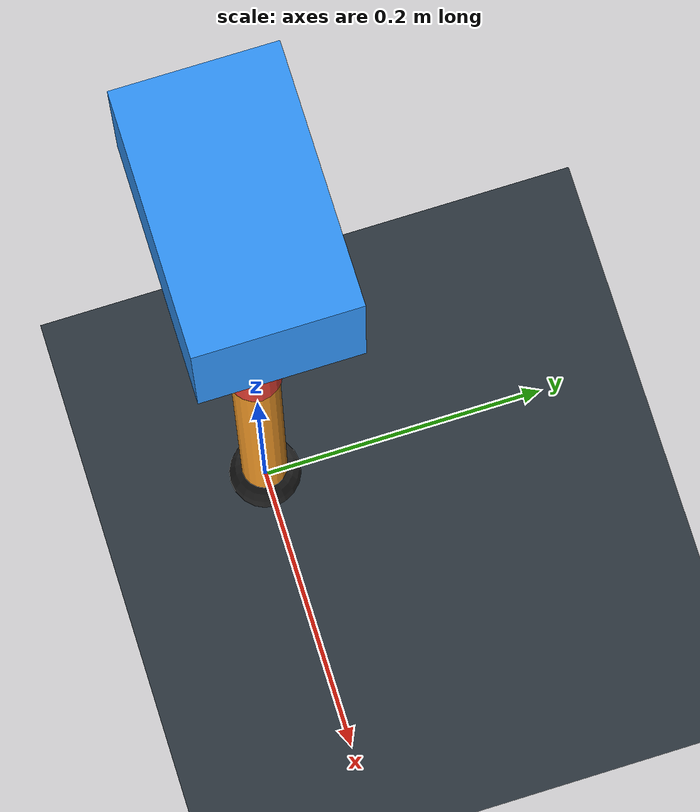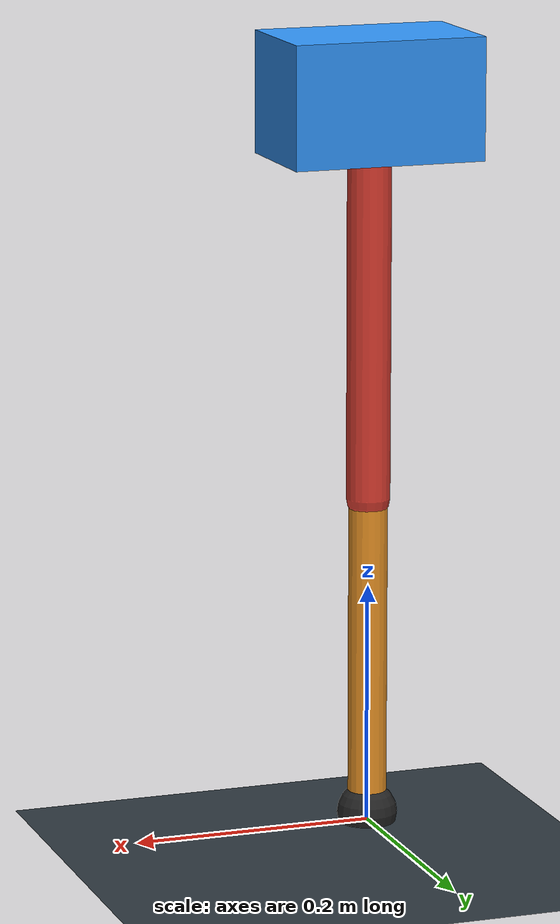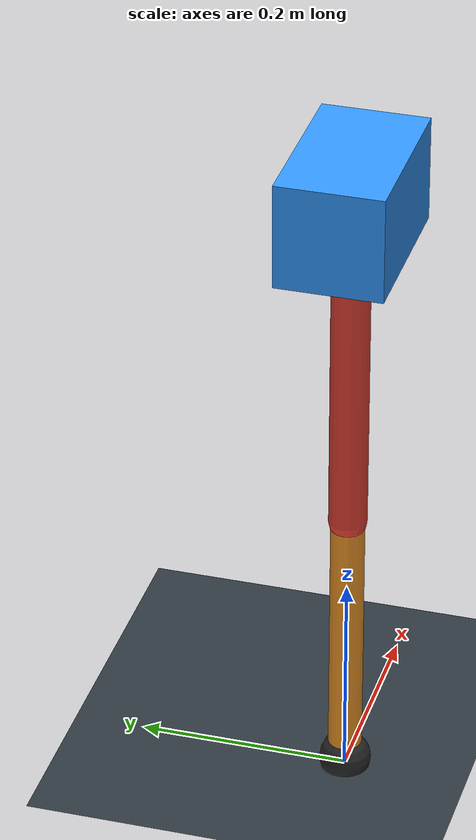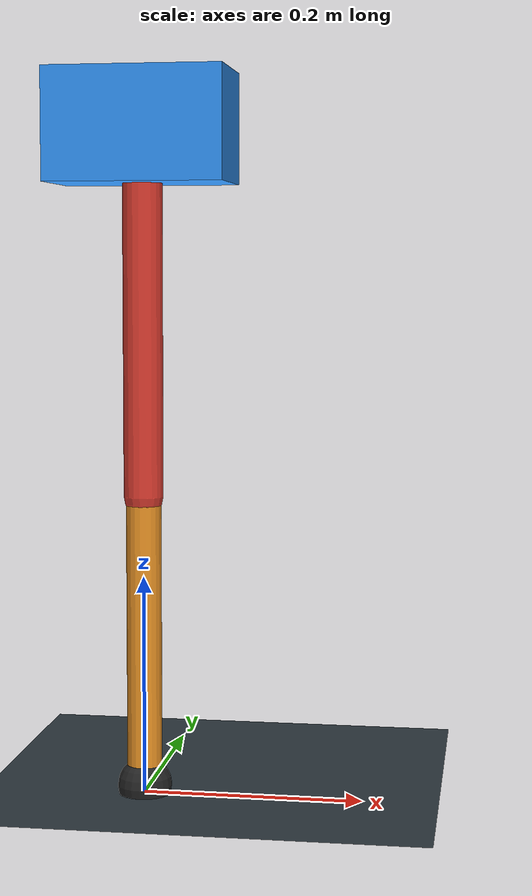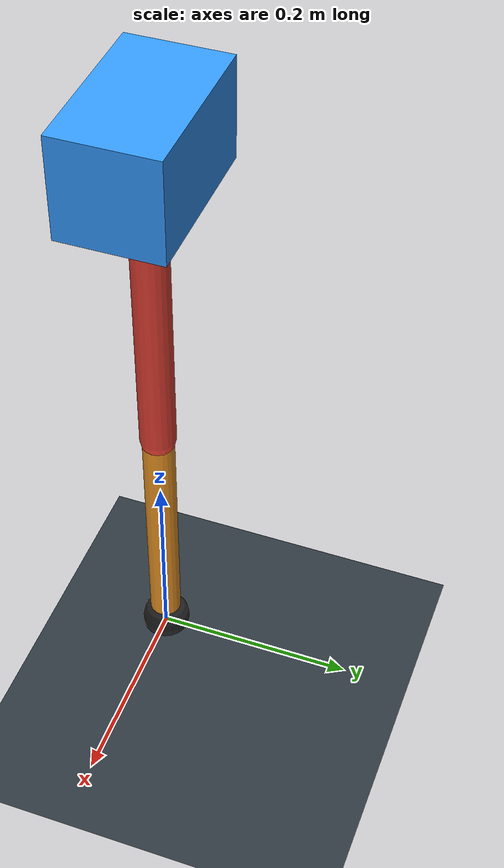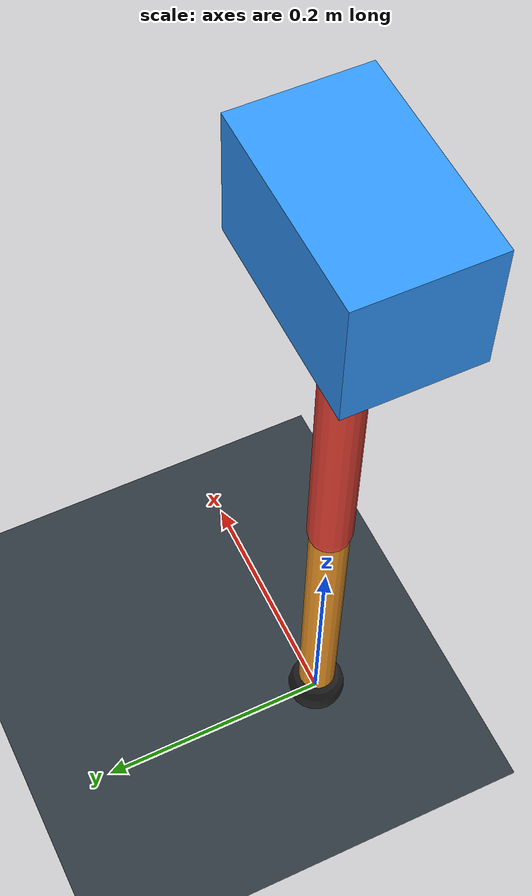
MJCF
<mujoco model="single_axis_two_bar">
  <compiler angle="radian" inertiafromgeom="true"/>
  <option timestep="0.001" integrator="implicitfast" gravity="0 0 -9.81"/>
  <default>
    <joint damping="0.08"/>
    <geom friction="1.2 0.01 0.0001" condim="3"/>
  </default>
  <worldbody>
    <geom name="floor" type="plane" size="5 5 0.1" rgba="0.18 0.22 0.25 1"/>
    <body name="carriage" pos="0 0 0.6059928582667359">
      <joint name="pole_slide" type="slide" axis="0 0 1"/>
      <geom name="payload" type="box" size="0.08 0.05 0.05" mass="3.129892940116745" rgba="0.2 0.6 1 1"/>
      <body name="thigh" pos="0 0 0">
        <joint name="hip" type="hinge" axis="0 1 0"/>
        <geom name="thigh_link" type="capsule" fromto="0 0 0 0 0 -0.3319062404843617" size="0.018" mass="0.2364875820991278" rgba="0.9 0.25 0.2 1"/>
        <body name="shank" pos="0 0 -0.3319062404843617">
          <joint name="knee" type="hinge" axis="0 1 0"/>
          <geom name="shank_link" type="capsule" fromto="0 0 0 0 0 -0.2670554690689742" size="0.016" mass="0.19028055053832527" rgba="0.95 0.6 0.15 1"/>
          <geom name="foot" type="sphere" pos="0 0 -0.2670554690689742" size="0.025" mass="0.03" rgba="0.15 0.15 0.15 1"/>
          <site name="toe" pos="0 0 -0.2670554690689742" size="0.008"/>
        </body>
      </body>
    </body>
  </worldbody>
  <actuator>
    <motor name="hip_motor" joint="hip" ctrlrange="-20.11509881042902 20.11509881042902"/>
    <motor name="knee_motor" joint="knee" ctrlrange="-133.34730698676614 133.34730698676614"/>
  </actuator>
</mujoco>
